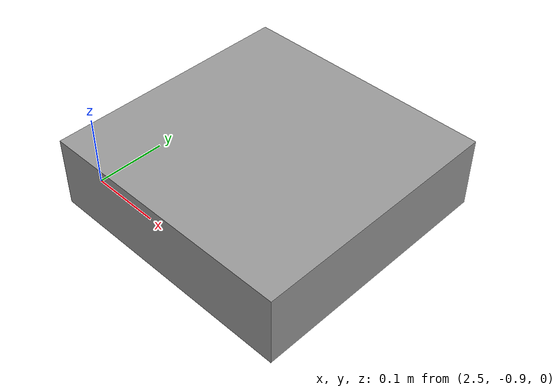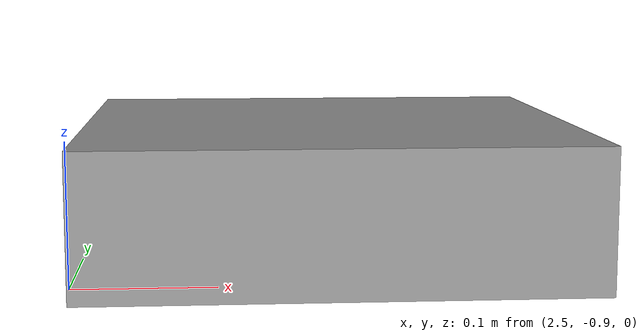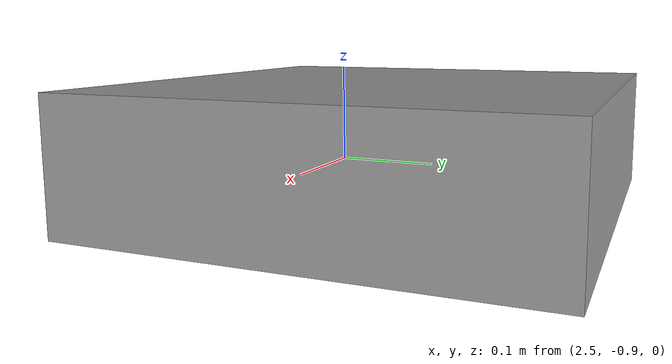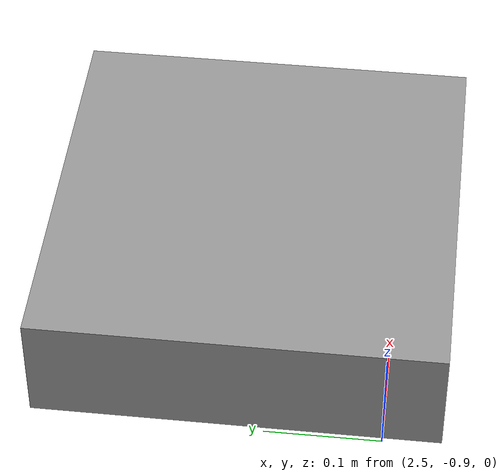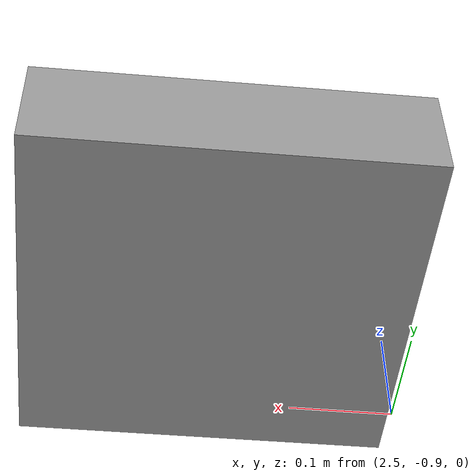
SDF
<?xml version='1.0'?>
<sdf version='1.7'>
  <model name='10cm_obscale'>
    <pose>1.43 -0.475 0 0 -0 0</pose>
    <link name='Stairs_1'>
      <visual name='Stairs_1_Visual_0'>
        <pose>1.252 -0.3 0.05 0 -0 0</pose>
        <geometry>
          <box>
            <size>0.356 0.35 0.1</size>
          </box>
        </geometry>
        <material>
          <script>
            <uri>file://media/materials/scripts/gazebo.material</uri>
            <name>Gazebo/Grey</name>
          </script>
          <ambient>1 1 1 1</ambient>
        </material>
        <meta>
          <layer>0</layer>
        </meta>
      </visual>
      <collision name='Stairs_1_Collision_0'>
        <geometry>
          <box>
            <size>0.356 0.35 0.1</size>
          </box>
        </geometry>
        <pose>1.252 -0.3 0.05 0 -0 0</pose>
      </collision>
    </link>
    <static>1</static>
  </model>
</sdf>
